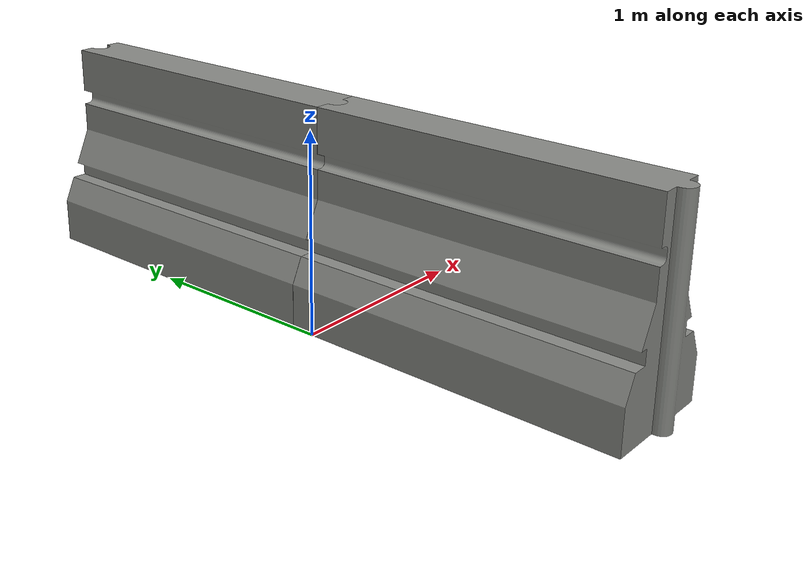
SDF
<?xml version='1.0'?>
<sdf version='1.7'>
  <model name='jersey_barrier'>
    <model name='red_jersey'>
      <link name='link'>
        <self_collide>0</self_collide>
        <enable_wind>0</enable_wind>
        <kinematic>0</kinematic>
        <pose>0 0 0 0 -0 0</pose>
        <gravity>1</gravity>
        <inertial>
          <mass>1</mass>
          <pose>0 0 0 0 -0 0</pose>
          <inertia>
            <ixx>1</ixx>
            <ixy>0</ixy>
            <ixz>0</ixz>
            <iyy>1</iyy>
            <iyz>0</iyz>
            <izz>1</izz>
          </inertia>
        </inertial>
        <visual name='visual'>
          <geometry>
            <mesh>
              <uri>model://drc_practice_white_jersey_barrier/meshes/jersey_barrier.dae</uri>
            </mesh>
          </geometry>
          <material>
            <shader type='pixel'>
              <normal_map>__default__</normal_map>
            </shader>
            <script>
              <name>ModelPreview_1::link::visual_MATERIAL_</name>
              <uri>__default__</uri>
            </script>
            <ambient>0.937 0.161 0.161 1</ambient>
            <diffuse>0.533 0.541 0.522 1</diffuse>
            <specular>0.8 0 0 1</specular>
            <emissive>0.8 0 0 1</emissive>
          </material>
          <pose>0 0 0 0 -0 0</pose>
          <transparency>0</transparency>
          <cast_shadows>1</cast_shadows>
        </visual>
        <collision name='collision'>
          <laser_retro>0</laser_retro>
          <max_contacts>10</max_contacts>
          <pose>0 0 0 0 -0 0</pose>
          <geometry>
            <mesh>
              <uri>/usr/share/gazebo-11/models/drc_practice_white_jersey_barrier/meshes/jersey_barrier.dae</uri>
              <scale>1 1 1</scale>
            </mesh>
          </geometry>
          <surface>
            <friction>
              <ode>
                <mu>1</mu>
                <mu2>1</mu2>
                <fdir1>0 0 0</fdir1>
                <slip1>0</slip1>
                <slip2>0</slip2>
              </ode>
              <torsional>
                <coefficient>1</coefficient>
                <patch_radius>0</patch_radius>
                <surface_radius>0</surface_radius>
                <use_patch_radius>1</use_patch_radius>
                <ode>
                  <slip>0</slip>
                </ode>
              </torsional>
            </friction>
            <bounce>
              <restitution_coefficient>0</restitution_coefficient>
              <threshold>1e+06</threshold>
            </bounce>
            <contact>
              <collide_without_contact>0</collide_without_contact>
              <collide_without_contact_bitmask>1</collide_without_contact_bitmask>
              <collide_bitmask>1</collide_bitmask>
              <ode>
                <soft_cfm>0</soft_cfm>
                <soft_erp>0.2</soft_erp>
                <kp>1e+13</kp>
                <kd>1</kd>
                <max_vel>0.01</max_vel>
                <min_depth>0</min_depth>
              </ode>
              <bullet>
                <split_impulse>1</split_impulse>
                <split_impulse_penetration_threshold>-0.01</split_impulse_penetration_threshold>
                <soft_cfm>0</soft_cfm>
                <soft_erp>0.2</soft_erp>
                <kp>1e+13</kp>
                <kd>1</kd>
              </bullet>
            </contact>
          </surface>
        </collision>
      </link>
      <static>1</static>
      <allow_auto_disable>1</allow_auto_disable>
      <pose>0.292453 -0.75391 0 0 -0 0</pose>
    </model>
    <model name='white_jersey'>
      <link name='link'>
        <self_collide>0</self_collide>
        <enable_wind>0</enable_wind>
        <kinematic>0</kinematic>
        <pose>0.592734 0.230157 0 0 -0 0</pose>
        <gravity>1</gravity>
        <inertial>
          <mass>1</mass>
          <pose>0 0 0 0 -0 0</pose>
          <inertia>
            <ixx>1</ixx>
            <ixy>0</ixy>
            <ixz>0</ixz>
            <iyy>1</iyy>
            <iyz>0</iyz>
            <izz>1</izz>
          </inertia>
        </inertial>
        <visual name='visual'>
          <geometry>
            <mesh>
              <uri>model://drc_practice_white_jersey_barrier/meshes/jersey_barrier.dae</uri>
            </mesh>
          </geometry>
          <material>
            <shader type='pixel'>
              <normal_map>__default__</normal_map>
            </shader>
            <script>
              <name>ModelPreview_1::link::visual_MATERIAL_</name>
              <uri>__default__</uri>
            </script>
            <ambient>0.533 0.541 0.522 1</ambient>
            <diffuse>0.533 0.541 0.522 1</diffuse>
            <specular>0.533 0.541 0.522 1</specular>
            <emissive>0.729 0.741 0.714 1</emissive>
          </material>
          <pose>0 0 0 0 -0 0</pose>
          <transparency>0</transparency>
          <cast_shadows>1</cast_shadows>
        </visual>
        <collision name='collision'>
          <laser_retro>0</laser_retro>
          <max_contacts>10</max_contacts>
          <pose>0 0 0 0 -0 0</pose>
          <geometry>
            <mesh>
              <uri>/usr/share/gazebo-11/models/drc_practice_white_jersey_barrier/meshes/jersey_barrier.dae</uri>
              <scale>1 1 1</scale>
            </mesh>
          </geometry>
          <surface>
            <friction>
              <ode>
                <mu>1</mu>
                <mu2>1</mu2>
                <fdir1>0 0 0</fdir1>
                <slip1>0</slip1>
                <slip2>0</slip2>
              </ode>
              <torsional>
                <coefficient>1</coefficient>
                <patch_radius>0</patch_radius>
                <surface_radius>0</surface_radius>
                <use_patch_radius>1</use_patch_radius>
                <ode>
                  <slip>0</slip>
                </ode>
              </torsional>
            </friction>
            <bounce>
              <restitution_coefficient>0</restitution_coefficient>
              <threshold>1e+06</threshold>
            </bounce>
            <contact>
              <collide_without_contact>0</collide_without_contact>
              <collide_without_contact_bitmask>1</collide_without_contact_bitmask>
              <collide_bitmask>1</collide_bitmask>
              <ode>
                <soft_cfm>0</soft_cfm>
                <soft_erp>0.2</soft_erp>
                <kp>1e+13</kp>
                <kd>1</kd>
                <max_vel>0.01</max_vel>
                <min_depth>0</min_depth>
              </ode>
              <bullet>
                <split_impulse>1</split_impulse>
                <split_impulse_penetration_threshold>-0.01</split_impulse_penetration_threshold>
                <soft_cfm>0</soft_cfm>
                <soft_erp>0.2</soft_erp>
                <kp>1e+13</kp>
                <kd>1</kd>
              </bullet>
            </contact>
          </surface>
        </collision>
      </link>
      <static>1</static>
      <allow_auto_disable>1</allow_auto_disable>
      <pose>-0.292452 0.753912 0 0 -0 0</pose>
    </model>
    <joint name='link_JOINT_2' type='fixed'>
      <parent>red_jersey::link</parent>
      <child>white_jersey::link</child>
      <pose>0 0 0 0 -0 0</pose>
      <physics>
        <ode>
          <limit>
            <cfm>0</cfm>
            <erp>0.2</erp>
          </limit>
          <suspension>
            <cfm>0</cfm>
            <erp>0.2</erp>
          </suspension>
        </ode>
      </physics>
    </joint>
    <joint name='link_JOINT_3' type='fixed'>
      <parent>white_jersey::link</parent>
      <child>red_jersey::link</child>
      <pose>0 0 0 0 -0 0</pose>
      <physics>
        <ode>
          <limit>
            <cfm>0</cfm>
            <erp>0.2</erp>
          </limit>
          <suspension>
            <cfm>0</cfm>
            <erp>0.2</erp>
          </suspension>
        </ode>
      </physics>
    </joint>
    <static>0</static>
    <allow_auto_disable>1</allow_auto_disable>
  </model>
</sdf>
